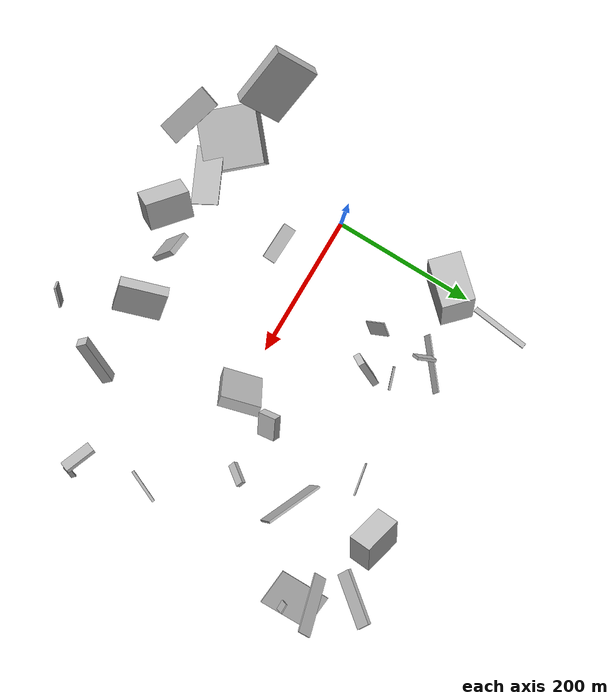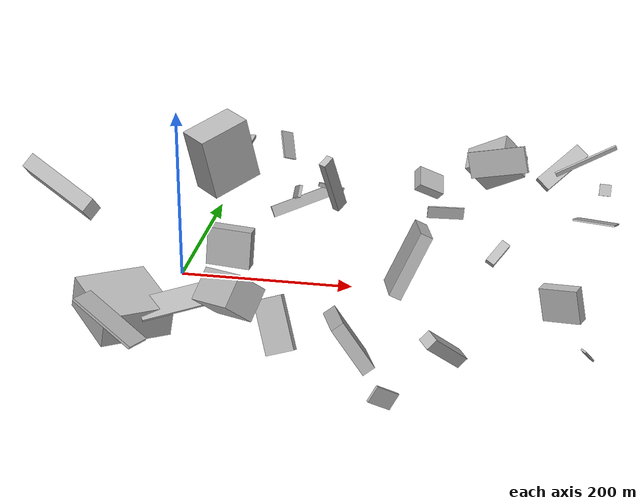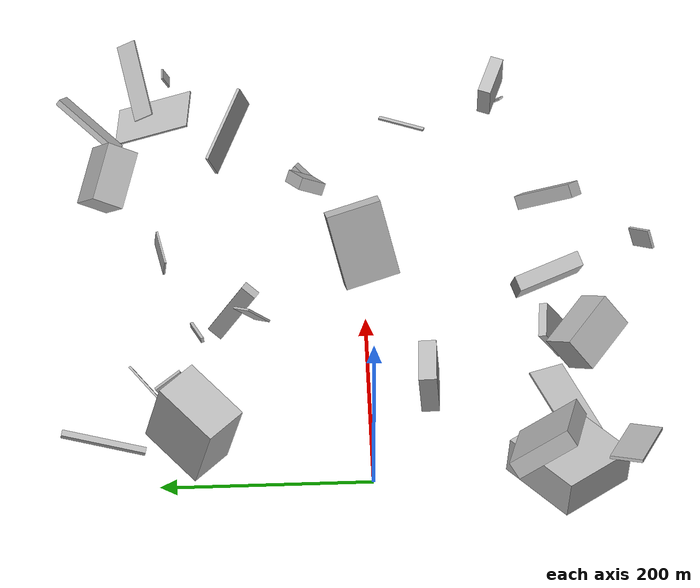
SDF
<sdf version="1.6">
 <world name="default">
  <scene>
   <sky><clouds><speed>12</speed></clouds></sky>
   <ambient>0.4 0.4 0.4 1</ambient>
   <background>0.7 0.7 0.7 1</background>
   <shadows>1</shadows>
  </scene>
  <gravity>0 0 -9.8066</gravity>
  <magnetic_field>6e-06 2.3e-05 -4.2e-05</magnetic_field>
  <physics default="0" name="default_physics" type="ode">
   <ode>
    <solver>
     <type>quick</type>
     <iters>10</iters>
     <sor>1.0</sor>
     <use_dynamic_moi_rescaling>0</use_dynamic_moi_rescaling>
    </solver>
    <constraints>
     <cfm>0</cfm>
     <erp>0.2</erp>
     <contact_max_correcting_vel>100</contact_max_correcting_vel>
     <contact_surface_layer>0.001</contact_surface_layer>
    </constraints>
   </ode>
   <max_step_size>0.004</max_step_size>
   <real_time_factor>1</real_time_factor>
   <real_time_update_rate>250</real_time_update_rate>
  </physics>
  <light name="sun" type="directional">
   <pose>0 0 10 0 0 0</pose>
   <diffuse>0.8 0.8 0.8 1</diffuse>
   <specular>0.2 0.2 0.2 1</specular>
   <attenuation>
    <range>1000</range>
    <constant>0.9</constant>
    <linear>0.01</linear>
    <quadratic>0.001</quadratic>
   </attenuation>
   <direction>-0.5 0.1 -0.9</direction>
  </light>
  <model name="building_1">
   <static>0</static>
   <pose>210.44206377441273 -178.19770131073312 52.65316010294728 2.5801751618920514 0.19344330823102868 1.8864322073742184</pose>
   <link name="link">
    <gravity>0</gravity>
    <pose>0 0 30.0 0 0 0</pose>
    <collision name="collision"><geometry><box><size>66 15 60</size></box></geometry></collision>
    <visual name="visual">
     <cast_shadows>0</cast_shadows>
     <geometry><box><size>66 15 60</size></box></geometry>
     <material>
      <script>
       <uri>model://HANNAS_wall/materials/scripts</uri>
       <uri>model://HANNAS_wall/materials/textures</uri>
       <name>vrc/HANNAS_wall</name>
      </script>
     </material>
    </visual>
   </link>
  </model>
  <model name="building_2">
   <static>0</static>
   <pose>25.225830343697766 150.96711433093435 83.27328968982853 1.5361933823625984 0.25038919710053537 -2.3446419206695626</pose>
   <link name="link">
    <gravity>0</gravity>
    <pose>0 0 21.5 0 0 0</pose>
    <collision name="collision"><geometry><box><size>66 80 43</size></box></geometry></collision>
    <visual name="visual">
     <cast_shadows>0</cast_shadows>
     <geometry><box><size>66 80 43</size></box></geometry>
     <material>
      <script>
       <uri>model://HANNAS_wall/materials/scripts</uri>
       <uri>model://HANNAS_wall/materials/textures</uri>
       <name>vrc/HANNAS_wall</name>
      </script>
     </material>
    </visual>
   </link>
  </model>
  <model name="building_3">
   <static>0</static>
   <pose>110.95997537339065 -193.95460910226427 98.52958311971072 2.4292067414197245 -0.20749775904081222 -0.6824279374283178</pose>
   <link name="link">
    <gravity>0</gravity>
    <pose>0 0 18.5 0 0 0</pose>
    <collision name="collision"><geometry><box><size>59 38 37</size></box></geometry></collision>
    <visual name="visual">
     <cast_shadows>0</cast_shadows>
     <geometry><box><size>59 38 37</size></box></geometry>
     <material>
      <script>
       <uri>model://HANNAS_wall/materials/scripts</uri>
       <uri>model://HANNAS_wall/materials/textures</uri>
       <name>vrc/HANNAS_wall</name>
      </script>
     </material>
    </visual>
   </link>
  </model>
  <model name="building_4">
   <static>0</static>
   <pose>323.6228812996598 -180.88591895513528 33.551233637996546 -2.047252484122477 -0.6832453755642502 -2.06808897765449</pose>
   <link name="link">
    <gravity>0</gravity>
    <pose>0 0 7.5 0 0 0</pose>
    <collision name="collision"><geometry><box><size>73 14 15</size></box></geometry></collision>
    <visual name="visual">
     <cast_shadows>0</cast_shadows>
     <geometry><box><size>73 14 15</size></box></geometry>
     <material>
      <script>
       <uri>model://HANNAS_wall/materials/scripts</uri>
       <uri>model://HANNAS_wall/materials/textures</uri>
       <name>vrc/HANNAS_wall</name>
      </script>
     </material>
    </visual>
   </link>
  </model>
  <model name="building_5">
   <static>0</static>
   <pose>16.043028433003343 250.91503650282 48.8841271140212 -0.007449419623481543 -0.20007287069030213 1.4280263488677947</pose>
   <link name="link">
    <gravity>0</gravity>
    <pose>0 0 2.0 0 0 0</pose>
    <collision name="collision"><geometry><box><size>80 7 4</size></box></geometry></collision>
    <visual name="visual">
     <cast_shadows>0</cast_shadows>
     <geometry><box><size>80 7 4</size></box></geometry>
     <material>
      <script>
       <uri>model://HANNAS_wall/materials/scripts</uri>
       <uri>model://HANNAS_wall/materials/textures</uri>
       <name>vrc/HANNAS_wall</name>
      </script>
     </material>
    </visual>
   </link>
  </model>
  <model name="building_6">
   <static>0</static>
   <pose>474.8363329390355 -141.4329032316004 12.8975398619219 -0.2759441557080551 -0.7913759699123746 -2.0865641374899813</pose>
   <link name="link">
    <gravity>0</gravity>
    <pose>0 0 1.0 0 0 0</pose>
    <collision name="collision"><geometry><box><size>25 7 2</size></box></geometry></collision>
    <visual name="visual">
     <cast_shadows>0</cast_shadows>
     <geometry><box><size>25 7 2</size></box></geometry>
     <material>
      <script>
       <uri>model://HANNAS_wall/materials/scripts</uri>
       <uri>model://HANNAS_wall/materials/textures</uri>
       <name>vrc/HANNAS_wall</name>
      </script>
     </material>
    </visual>
   </link>
  </model>
  <model name="building_7">
   <static>0</static>
   <pose>50.54934049052272 -197.72425239746124 55.7754464290646 -1.3495192761201817 -0.143554898056219 0.4426462317497913</pose>
   <link name="link">
    <gravity>0</gravity>
    <pose>0 0 18.5 0 0 0</pose>
    <collision name="collision"><geometry><box><size>80 2 37</size></box></geometry></collision>
    <visual name="visual">
     <cast_shadows>0</cast_shadows>
     <geometry><box><size>80 2 37</size></box></geometry>
     <material>
      <script>
       <uri>model://HANNAS_wall/materials/scripts</uri>
       <uri>model://HANNAS_wall/materials/textures</uri>
       <name>vrc/HANNAS_wall</name>
      </script>
     </material>
    </visual>
   </link>
  </model>
  <model name="building_8">
   <static>0</static>
   <pose>98.09181435674108 203.99461678596478 17.090237132314464 -2.9761360679929005 -0.42036450297021544 -0.9678918968589062</pose>
   <link name="link">
    <gravity>0</gravity>
    <pose>0 0 7.0 0 0 0</pose>
    <collision name="collision"><geometry><box><size>2 80 14</size></box></geometry></collision>
    <visual name="visual">
     <cast_shadows>0</cast_shadows>
     <geometry><box><size>2 80 14</size></box></geometry>
     <material>
      <script>
       <uri>model://HANNAS_wall/materials/scripts</uri>
       <uri>model://HANNAS_wall/materials/textures</uri>
       <name>vrc/HANNAS_wall</name>
      </script>
     </material>
    </visual>
   </link>
  </model>
  <model name="building_9">
   <static>0</static>
   <pose>450.989993189321 221.95210905591594 81.98539322490969 -0.5320053951304661 0.5750479879417469 1.4934610604699983</pose>
   <link name="link">
    <gravity>0</gravity>
    <pose>0 0 1.0 0 0 0</pose>
    <collision name="collision"><geometry><box><size>21 80 2</size></box></geometry></collision>
    <visual name="visual">
     <cast_shadows>0</cast_shadows>
     <geometry><box><size>21 80 2</size></box></geometry>
     <material>
      <script>
       <uri>model://HANNAS_wall/materials/scripts</uri>
       <uri>model://HANNAS_wall/materials/textures</uri>
       <name>vrc/HANNAS_wall</name>
      </script>
     </material>
    </visual>
   </link>
  </model>
  <model name="building_10">
   <static>0</static>
   <pose>-20.184857105677374 -178.95028189437502 30.132541803688106 0.08720679272442566 -0.17724127059330388 2.261522550203607</pose>
   <link name="link">
    <gravity>0</gravity>
    <pose>0 0 18.0 0 0 0</pose>
    <collision name="collision"><geometry><box><size>80 80 36</size></box></geometry></collision>
    <visual name="visual">
     <cast_shadows>0</cast_shadows>
     <geometry><box><size>80 80 36</size></box></geometry>
     <material>
      <script>
       <uri>model://HANNAS_wall/materials/scripts</uri>
       <uri>model://HANNAS_wall/materials/textures</uri>
       <name>vrc/HANNAS_wall</name>
      </script>
     </material>
    </visual>
   </link>
  </model>
  <model name="building_11">
   <static>0</static>
   <pose>72.33436848471929 -46.263519924649266 66.39435554497393 -1.48653811142015 -0.06242660350442532 3.1016351891985936</pose>
   <link name="link">
    <gravity>0</gravity>
    <pose>0 0 8.5 0 0 0</pose>
    <collision name="collision"><geometry><box><size>50 44 17</size></box></geometry></collision>
    <visual name="visual">
     <cast_shadows>0</cast_shadows>
     <geometry><box><size>50 44 17</size></box></geometry>
     <material>
      <script>
       <uri>model://HANNAS_wall/materials/scripts</uri>
       <uri>model://HANNAS_wall/materials/textures</uri>
       <name>vrc/HANNAS_wall</name>
      </script>
     </material>
    </visual>
   </link>
  </model>
  <model name="building_12">
   <static>0</static>
   <pose>271.2483903972147 -25.298221826081996 43.21179121246044 1.8718939799478505 1.0823329676076725 -2.61726005745339</pose>
   <link name="link">
    <gravity>0</gravity>
    <pose>0 0 27.5 0 0 0</pose>
    <collision name="collision"><geometry><box><size>80 15 55</size></box></geometry></collision>
    <visual name="visual">
     <cast_shadows>0</cast_shadows>
     <geometry><box><size>80 15 55</size></box></geometry>
     <material>
      <script>
       <uri>model://HANNAS_wall/materials/scripts</uri>
       <uri>model://HANNAS_wall/materials/textures</uri>
       <name>vrc/HANNAS_wall</name>
      </script>
     </material>
    </visual>
   </link>
  </model>
  <model name="building_13">
   <static>0</static>
   <pose>147.03298289752007 161.479575267319 50.55175760737599 1.5697127440705514 -0.3300298068111117 -2.790544145745518</pose>
   <link name="link">
    <gravity>0</gravity>
    <pose>0 0 1.5 0 0 0</pose>
    <collision name="collision"><geometry><box><size>32 5 3</size></box></geometry></collision>
    <visual name="visual">
     <cast_shadows>0</cast_shadows>
     <geometry><box><size>32 5 3</size></box></geometry>
     <material>
      <script>
       <uri>model://HANNAS_wall/materials/scripts</uri>
       <uri>model://HANNAS_wall/materials/textures</uri>
       <name>vrc/HANNAS_wall</name>
      </script>
     </material>
    </visual>
   </link>
  </model>
  <model name="building_14">
   <static>0</static>
   <pose>430.2182531805592 -67.65727975783714 22.32725793908313 -2.2723166449520997 -1.4744449326747997 0.2634897186162376</pose>
   <link name="link">
    <gravity>0</gravity>
    <pose>0 0 24.5 0 0 0</pose>
    <collision name="collision"><geometry><box><size>2 4 49</size></box></geometry></collision>
    <visual name="visual">
     <cast_shadows>0</cast_shadows>
     <geometry><box><size>2 4 49</size></box></geometry>
     <material>
      <script>
       <uri>model://HANNAS_wall/materials/scripts</uri>
       <uri>model://HANNAS_wall/materials/textures</uri>
       <name>vrc/HANNAS_wall</name>
      </script>
     </material>
    </visual>
   </link>
  </model>
  <model name="building_15">
   <static>0</static>
   <pose>397.85347792641267 241.3625487742496 38.96444530905984 1.1395371980163167 -0.6170087252108534 2.7248618107667752</pose>
   <link name="link">
    <gravity>0</gravity>
    <pose>0 0 38.0 0 0 0</pose>
    <collision name="collision"><geometry><box><size>20 6 76</size></box></geometry></collision>
    <visual name="visual">
     <cast_shadows>0</cast_shadows>
     <geometry><box><size>20 6 76</size></box></geometry>
     <material>
      <script>
       <uri>model://HANNAS_wall/materials/scripts</uri>
       <uri>model://HANNAS_wall/materials/textures</uri>
       <name>vrc/HANNAS_wall</name>
      </script>
     </material>
    </visual>
   </link>
  </model>
  <model name="building_16">
   <static>0</static>
   <pose>139.20334740208014 -166.43082910243297 64.63395055278 -2.780027204948029 0.3537447261634136 3.062107088834082</pose>
   <link name="link">
    <gravity>0</gravity>
    <pose>0 0 30.0 0 0 0</pose>
    <collision name="collision"><geometry><box><size>33 8 60</size></box></geometry></collision>
    <visual name="visual">
     <cast_shadows>0</cast_shadows>
     <geometry><box><size>33 8 60</size></box></geometry>
     <material>
      <script>
       <uri>model://HANNAS_wall/materials/scripts</uri>
       <uri>model://HANNAS_wall/materials/textures</uri>
       <name>vrc/HANNAS_wall</name>
      </script>
     </material>
    </visual>
   </link>
  </model>
  <model name="building_17">
   <static>0</static>
   <pose>-12.65321946098674 -242.6499497742638 62.75937145827237 -0.16105002044069525 0.47652239614013703 -0.38178375254755537</pose>
   <link name="link">
    <gravity>0</gravity>
    <pose>0 0 1.5 0 0 0</pose>
    <collision name="collision"><geometry><box><size>80 31 3</size></box></geometry></collision>
    <visual name="visual">
     <cast_shadows>0</cast_shadows>
     <geometry><box><size>80 31 3</size></box></geometry>
     <material>
      <script>
       <uri>model://HANNAS_wall/materials/scripts</uri>
       <uri>model://HANNAS_wall/materials/textures</uri>
       <name>vrc/HANNAS_wall</name>
      </script>
     </material>
    </visual>
   </link>
  </model>
  <model name="building_18">
   <static>0</static>
   <pose>283.48646408166695 198.66446153207633 10.466830434931637 1.431476068922423 -0.06322351511906482 -2.9482277133254704</pose>
   <link name="link">
    <gravity>0</gravity>
    <pose>0 0 1.0 0 0 0</pose>
    <collision name="collision"><geometry><box><size>45 16 2</size></box></geometry></collision>
    <visual name="visual">
     <cast_shadows>0</cast_shadows>
     <geometry><box><size>45 16 2</size></box></geometry>
     <material>
      <script>
       <uri>model://HANNAS_wall/materials/scripts</uri>
       <uri>model://HANNAS_wall/materials/textures</uri>
       <name>vrc/HANNAS_wall</name>
      </script>
     </material>
    </visual>
   </link>
  </model>
  <model name="building_19">
   <static>0</static>
   <pose>278.1121798403701 -274.56448497320963 19.694915337120754 1.6733157405447963 0.572121236724747 0.6969105698702711</pose>
   <link name="link">
    <gravity>0</gravity>
    <pose>0 0 1.5 0 0 0</pose>
    <collision name="collision"><geometry><box><size>30 19 3</size></box></geometry></collision>
    <visual name="visual">
     <cast_shadows>0</cast_shadows>
     <geometry><box><size>30 19 3</size></box></geometry>
     <material>
      <script>
       <uri>model://HANNAS_wall/materials/scripts</uri>
       <uri>model://HANNAS_wall/materials/textures</uri>
       <name>vrc/HANNAS_wall</name>
      </script>
     </material>
    </visual>
   </link>
  </model>
  <model name="building_20">
   <static>0</static>
   <pose>100.44942105797877 191.88340537035637 36.37267646311573 2.668494503107099 0.2841949706043383 0.2873761203058251</pose>
   <link name="link">
    <gravity>0</gravity>
    <pose>0 0 7.5 0 0 0</pose>
    <collision name="collision"><geometry><box><size>4 29 15</size></box></geometry></collision>
    <visual name="visual">
     <cast_shadows>0</cast_shadows>
     <geometry><box><size>4 29 15</size></box></geometry>
     <material>
      <script>
       <uri>model://HANNAS_wall/materials/scripts</uri>
       <uri>model://HANNAS_wall/materials/textures</uri>
       <name>vrc/HANNAS_wall</name>
      </script>
     </material>
    </visual>
   </link>
  </model>
  <model name="building_21">
   <static>0</static>
   <pose>151.1024956205985 129.8024657100957 71.13920224808155 1.7969418029219995 1.1121359639156416 1.2627805668223937</pose>
   <link name="link">
    <gravity>0</gravity>
    <pose>0 0 4.5 0 0 0</pose>
    <collision name="collision"><geometry><box><size>80 16 9</size></box></geometry></collision>
    <visual name="visual">
     <cast_shadows>0</cast_shadows>
     <geometry><box><size>80 16 9</size></box></geometry>
     <material>
      <script>
       <uri>model://HANNAS_wall/materials/scripts</uri>
       <uri>model://HANNAS_wall/materials/textures</uri>
       <name>vrc/HANNAS_wall</name>
      </script>
     </material>
    </visual>
   </link>
  </model>
  <model name="building_22">
   <static>0</static>
   <pose>476.3048185629212 193.57730287191822 58.24476866418633 1.0775374944855063 0.05492473892235455 0.019592621004104797</pose>
   <link name="link">
    <gravity>0</gravity>
    <pose>0 0 1.0 0 0 0</pose>
    <collision name="collision"><geometry><box><size>14 14 2</size></box></geometry></collision>
    <visual name="visual">
     <cast_shadows>0</cast_shadows>
     <geometry><box><size>14 14 2</size></box></geometry>
     <material>
      <script>
       <uri>model://HANNAS_wall/materials/scripts</uri>
       <uri>model://HANNAS_wall/materials/textures</uri>
       <name>vrc/HANNAS_wall</name>
      </script>
     </material>
    </visual>
   </link>
  </model>
  <model name="building_23">
   <static>0</static>
   <pose>443.2819126663583 -140.7311338823284 68.05583500452153 -1.5189866862611079 -0.1612531107397211 -0.3678052174209916</pose>
   <link name="link">
    <gravity>0</gravity>
    <pose>0 0 6.5 0 0 0</pose>
    <collision name="collision"><geometry><box><size>43 38 13</size></box></geometry></collision>
    <visual name="visual">
     <cast_shadows>0</cast_shadows>
     <geometry><box><size>43 38 13</size></box></geometry>
     <material>
      <script>
       <uri>model://HANNAS_wall/materials/scripts</uri>
       <uri>model://HANNAS_wall/materials/textures</uri>
       <name>vrc/HANNAS_wall</name>
      </script>
     </material>
    </visual>
   </link>
  </model>
  <model name="building_24">
   <static>0</static>
   <pose>326.55965378591173 240.90230073844745 78.0551005145756 2.5675374371928696 -0.49256906542334433 1.5418708501231146</pose>
   <link name="link">
    <gravity>0</gravity>
    <pose>0 0 23.5 0 0 0</pose>
    <collision name="collision"><geometry><box><size>32 58 47</size></box></geometry></collision>
    <visual name="visual">
     <cast_shadows>0</cast_shadows>
     <geometry><box><size>32 58 47</size></box></geometry>
     <material>
      <script>
       <uri>model://HANNAS_wall/materials/scripts</uri>
       <uri>model://HANNAS_wall/materials/textures</uri>
       <name>vrc/HANNAS_wall</name>
      </script>
     </material>
    </visual>
   </link>
  </model>
  <model name="building_25">
   <static>0</static>
   <pose>465.5202149188894 170.4142272798434 24.406002968358187 -1.9641311052810706 0.053467139013362 -0.08238417210524342</pose>
   <link name="link">
    <gravity>0</gravity>
    <pose>0 0 40.0 0 0 0</pose>
    <collision name="collision"><geometry><box><size>51 2 80</size></box></geometry></collision>
    <visual name="visual">
     <cast_shadows>0</cast_shadows>
     <geometry><box><size>51 2 80</size></box></geometry>
     <material>
      <script>
       <uri>model://HANNAS_wall/materials/scripts</uri>
       <uri>model://HANNAS_wall/materials/textures</uri>
       <name>vrc/HANNAS_wall</name>
      </script>
     </material>
    </visual>
   </link>
  </model>
  <model name="building_26">
   <static>0</static>
   <pose>354.4945064097806 125.43223520531767 97.18305378813352 -0.16511737970072476 -0.3297077603444817 -0.44526756457521244</pose>
   <link name="link">
    <gravity>0</gravity>
    <pose>0 0 15.5 0 0 0</pose>
    <collision name="collision"><geometry><box><size>80 3 31</size></box></geometry></collision>
    <visual name="visual">
     <cast_shadows>0</cast_shadows>
     <geometry><box><size>80 3 31</size></box></geometry>
     <material>
      <script>
       <uri>model://HANNAS_wall/materials/scripts</uri>
       <uri>model://HANNAS_wall/materials/textures</uri>
       <name>vrc/HANNAS_wall</name>
      </script>
     </material>
    </visual>
   </link>
  </model>
  <model name="building_27">
   <static>0</static>
   <pose>-51.47891724269907 -158.8426193738863 147.71888050201653 -0.9242378039368425 0.5813817553380413 1.7423864476125828</pose>
   <link name="link">
    <gravity>0</gravity>
    <pose>0 0 40.0 0 0 0</pose>
    <collision name="collision"><geometry><box><size>61 17 80</size></box></geometry></collision>
    <visual name="visual">
     <cast_shadows>0</cast_shadows>
     <geometry><box><size>61 17 80</size></box></geometry>
     <material>
      <script>
       <uri>model://HANNAS_wall/materials/scripts</uri>
       <uri>model://HANNAS_wall/materials/textures</uri>
       <name>vrc/HANNAS_wall</name>
      </script>
     </material>
    </visual>
   </link>
  </model>
  <model name="building_28">
   <static>0</static>
   <pose>365.9838268304886 51.96445062432076 27.744016097428293 0.8374693096267808 -0.8669029401667965 -1.3155304762832247</pose>
   <link name="link">
    <gravity>0</gravity>
    <pose>0 0 5.5 0 0 0</pose>
    <collision name="collision"><geometry><box><size>7 32 11</size></box></geometry></collision>
    <visual name="visual">
     <cast_shadows>0</cast_shadows>
     <geometry><box><size>7 32 11</size></box></geometry>
     <material>
      <script>
       <uri>model://HANNAS_wall/materials/scripts</uri>
       <uri>model://HANNAS_wall/materials/textures</uri>
       <name>vrc/HANNAS_wall</name>
      </script>
     </material>
    </visual>
   </link>
  </model>
  <model name="building_29">
   <static>0</static>
   <pose>292.1645157419171 61.77557546814354 104.84820178282155 -0.9871737611764129 -0.5288160835204835 1.717027966565479</pose>
   <link name="link">
    <gravity>0</gravity>
    <pose>0 0 16.0 0 0 0</pose>
    <collision name="collision"><geometry><box><size>26 12 32</size></box></geometry></collision>
    <visual name="visual">
     <cast_shadows>0</cast_shadows>
     <geometry><box><size>26 12 32</size></box></geometry>
     <material>
      <script>
       <uri>model://HANNAS_wall/materials/scripts</uri>
       <uri>model://HANNAS_wall/materials/textures</uri>
       <name>vrc/HANNAS_wall</name>
      </script>
     </material>
    </visual>
   </link>
  </model>
  <model name="building_30">
   <static>0</static>
   <pose>108.65342260950023 100.07531062559158 111.45616969631955 -0.5507993784824359 0.42211447367927263 0.9439067388390356</pose>
   <link name="link">
    <gravity>0</gravity>
    <pose>0 0 16.5 0 0 0</pose>
    <collision name="collision"><geometry><box><size>19 2 33</size></box></geometry></collision>
    <visual name="visual">
     <cast_shadows>0</cast_shadows>
     <geometry><box><size>19 2 33</size></box></geometry>
     <material>
      <script>
       <uri>model://HANNAS_wall/materials/scripts</uri>
       <uri>model://HANNAS_wall/materials/textures</uri>
       <name>vrc/HANNAS_wall</name>
      </script>
     </material>
    </visual>
   </link>
  </model>
 </world>
</sdf>
